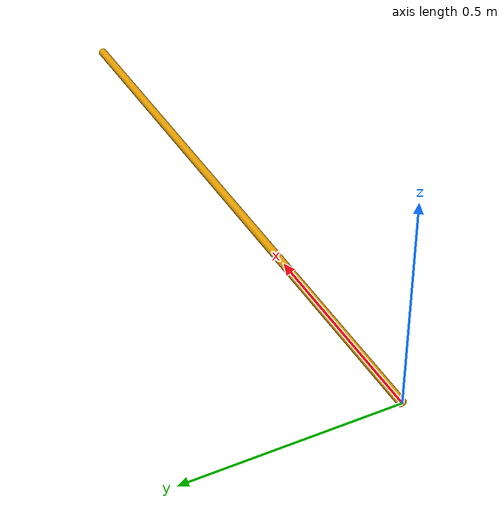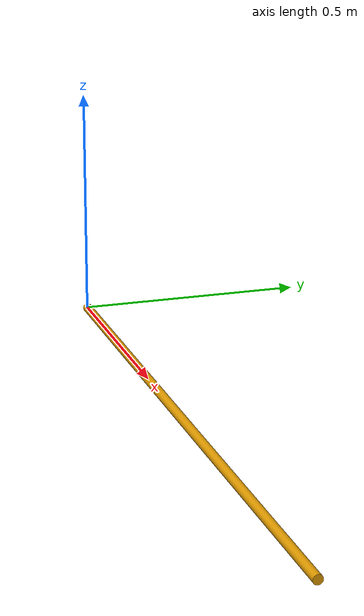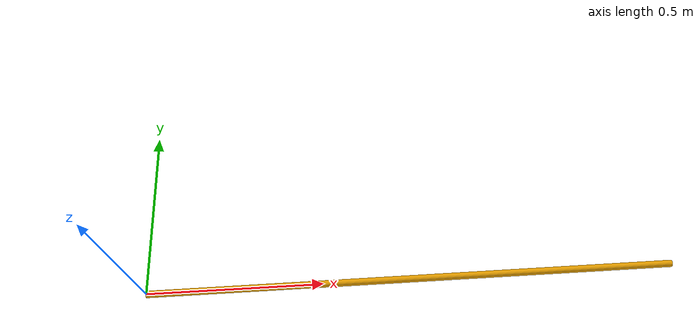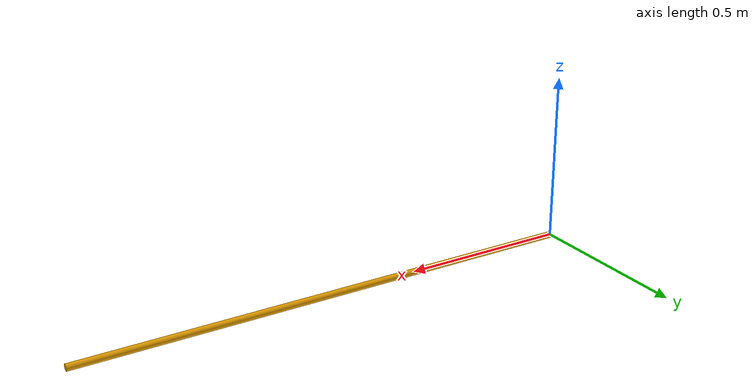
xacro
<?xml version="1.0" ?>
<robot name="tether" xmlns:xacro="http://ros.org/wiki/xacro">
    <!-- Xacro to generate tether SDF -->
    <!-- Note: need to manually find and replace all references to 'continuous'
    with 'ball' in final SDF to get better tether-->

    <!-- Define properties -->
    <xacro:property name="tether_length" value="1.5" />
    <xacro:property name="tether_radius" value="0.01" />
    <xacro:property name="tether_mass" value="0.001" />
    <xacro:property name="num_elements" value="1" />

    <xacro:property name="elem_length_main" value="${tether_length/num_elements}" />
    <xacro:property name="elem_mass_main" value="${tether_mass/num_elements}" />

    <!-- Define link macro -->
    <xacro:macro name="tether_element" params="element_num elem_length elem_mass">
        <link name="element_${element_num}">
            <inertial>
                <origin xyz="${elem_length/2} 0 0" rpy="0 ${pi/2} 0" />
                <mass value="${elem_mass}"/>
                <inertia ixx="${1/12*elem_mass*(3*tether_radius**2 + elem_length**2)}" ixy="0" ixz="0" iyy="${1/12*elem_mass*(3*tether_radius**2 + elem_length**2)}" iyz="0" izz="${1/2*elem_mass*(tether_radius**2)}" />
            </inertial>
            <visual>
                <origin xyz="${elem_length/2} 0 0" rpy="0 ${pi/2} 0" />
                <geometry>
                    <cylinder length="${elem_length}" radius="${tether_radius}"/>
                </geometry>
            </visual>
            <collision>
                <origin xyz="${elem_length/2} 0 0" rpy="0 ${pi/2} 0" />
                <geometry>
                    <cylinder length="0.0001" radius="0.0001"/>
                </geometry>
            </collision>
        </link>
    </xacro:macro>

    <!-- Recursive loop to generate multiple elements and joints for said elements -->
    <xacro:macro name="generate_tether" params="elem_num">
        <!-- Generate elements and recurse-->
        <xacro:tether_element element_num="${elem_num}" elem_length="${elem_length_main}" elem_mass="${elem_mass_main}" />

        <xacro:if value="${elem_num-1}">
            <xacro:generate_tether elem_num="${elem_num-1}" />
        </xacro:if>

        <!-- Define joints -->
        <xacro:if value="${elem_num-1 > 0}">
            <joint name="joint_${elem_num-1}_to_${elem_num}" type="continuous">
                <axis xyz="0. 1. 1."/>
                <origin xyz="${elem_length_main} 0 0" rpy="0 0 0"/>
                <parent link="element_${elem_num-1}"/>
                <child link="element_${elem_num}"/>

                <dynamics damping="10.0" friction="0.0"/>
            </joint>

        </xacro:if>

    </xacro:macro>

    <!-- Call recursive loop to generate tether -->
    <xacro:generate_tether elem_num="${num_elements}" />

    <!-- Add start and end elements and joints-->

    <!-- Define joints -->
        <!-- Add start element joint-->

</robot>
